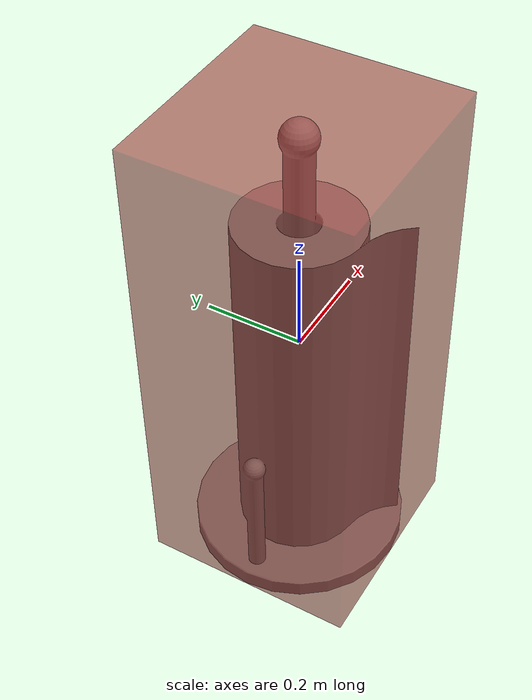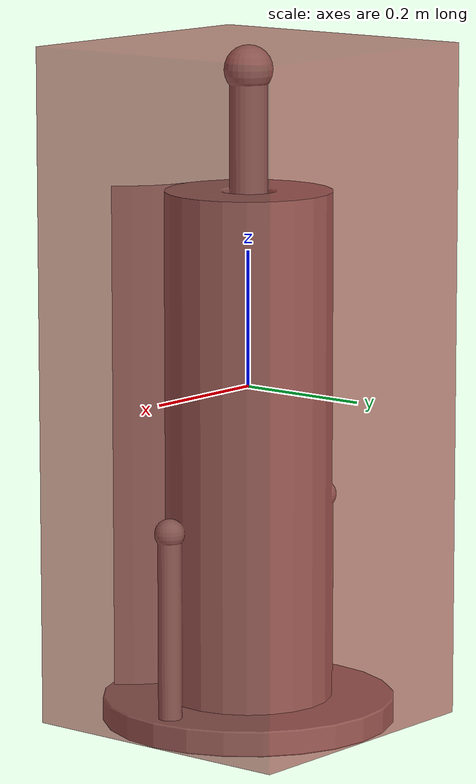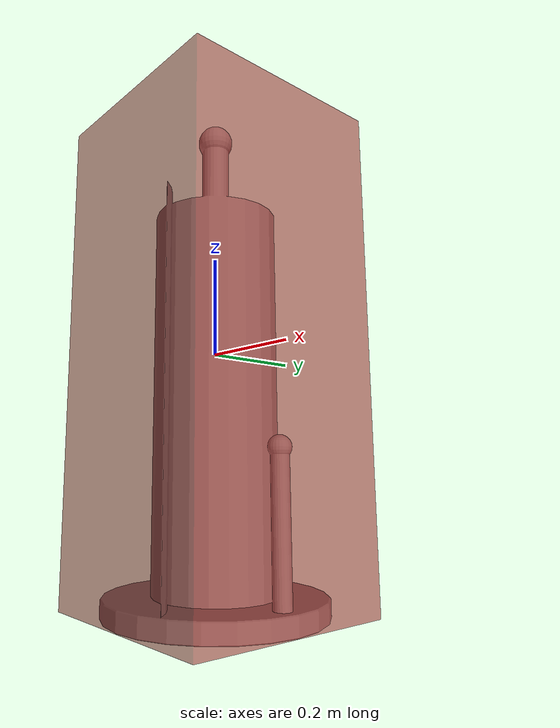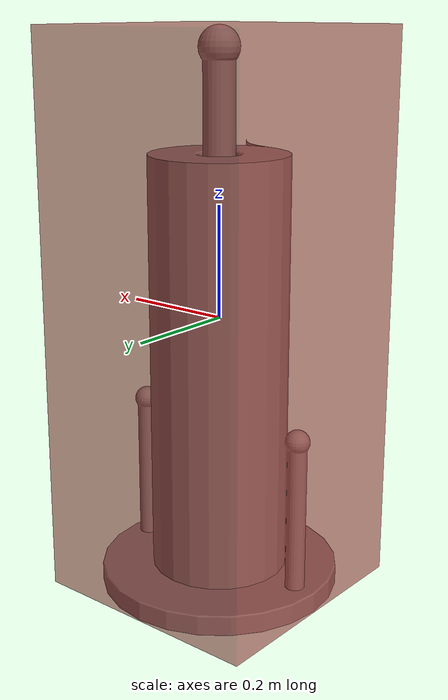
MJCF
<mujoco model="model">
  <asset>
    <texture file="visuals/material_0.png" name="tex-model" type="2d"/>
    <texture type="2d" name="image0" file="visuals/image0.png"/>
    <material name="model" reflectance="0.5" texrepeat="1 1" texture="tex-model" texuniform="false"/>
    <material name="Paper_Towel_Holder_mtl" texture="image0" specular="0.5" shininess="0.25"/>
    <mesh file="visuals/model_0.obj" name="model_0_vis" scale="1 1 1"/>
  </asset>
  <default>
    <default class="visual">
      <geom conaffinity="0" contype="0" group="1" type="mesh"/>
    </default>
    <default class="collision">
      <geom group="0" rgba="0.5 0 0 0.5"/>
    </default>
    <default class="region">
      <geom group="1" conaffinity="0" contype="0" rgba="0 1 0 0"/>
    </default>
  </default>
  <worldbody>
    <body>
      <!-- exterior bounding box points -->
      <!-- interior bounding box points -->
      <body name="object">
        <geom solimp="0.998 0.998 0.001" solref="0.001 1" density="100" friction="0.95 0.3 0.1" type="mesh" mesh="model_0_vis" material="Paper_Towel_Holder_mtl" class="visual"/>
        <geom class="collision" type="box" pos="0 0 0" size="0.2161264218316423 0.2161264218316423 0.5"/>
        <geom class="region" name="reg_main" type="box" pos="0.0 0.0 0.0" size="0.2161264218316423 0.2161264218316423 0.5"/>
      </body>
    </body>
  </worldbody>
</mujoco>
